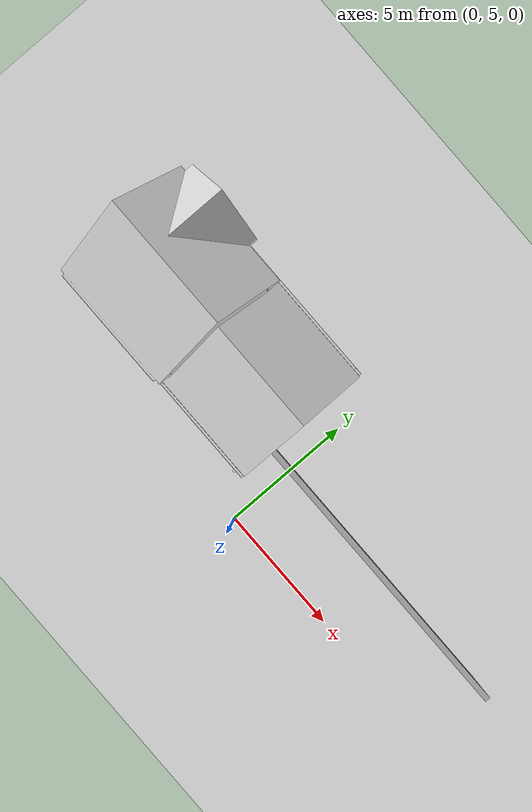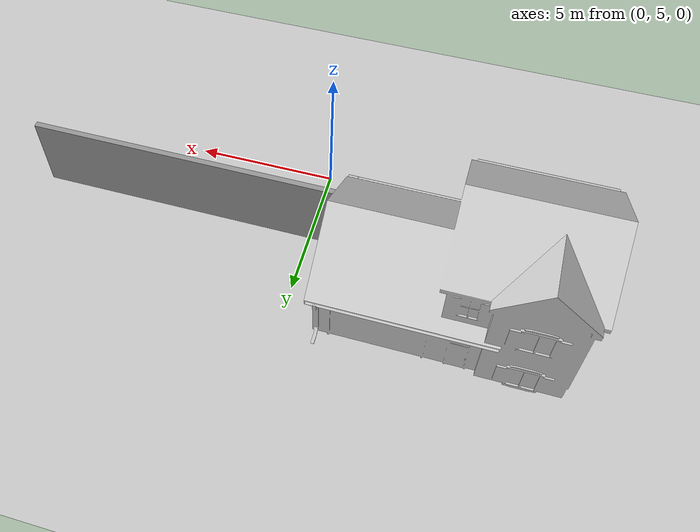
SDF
<sdf version="1.4">
 <world name="default">
  <light name="sun" type="directional">
   <pose>0 0 10 0 -0 0</pose>
   <diffuse>0.8 0.8 0.8 1</diffuse>
   <specular>0.2 0.2 0.2 1</specular>
   <attenuation>
    <range>1000</range>
    <constant>0.9</constant>
    <linear>0.01</linear>
    <quadratic>0.001</quadratic>
   </attenuation>
   <direction>-0.5 0.1 -0.9</direction>
  </light>
  <model name="ground_plane">
   <static>1</static>
   <link name="link">
    <collision name="collision">
     <geometry><plane><normal>0 0 1</normal><size>100 100</size></plane></geometry>
     <surface><friction><ode><mu>100</mu><mu2>50</mu2></ode></friction></surface>
    </collision>
    <visual name="visual">
     <cast_shadows>0</cast_shadows>
     <geometry><plane><normal>0 0 1</normal><size>100 100</size></plane></geometry>
     <material>
      <script><uri>file://media/materials/scripts/gazebo.material</uri><name>Gazebo/Grey</name></script>
     </material>
    </visual>
    <velocity_decay><linear>0</linear><angular>0</angular></velocity_decay>
   </link>
  </model>
  <physics type="ode">
   <max_step_size>0.001</max_step_size>
   <real_time_factor>1</real_time_factor>
   <real_time_update_rate>1000</real_time_update_rate>
   <gravity>0 0 -9.8</gravity>
  </physics>
  <scene><ambient>0.4 0.4 0.4 1</ambient><background>0.7 0.7 0.7 1</background><shadows>1</shadows></scene>
  <model name="House 3">
   <static>1</static>
   <link name="link">
    <collision name="collision">
     <geometry><mesh><uri>model://house_3/meshes/house_3.dae</uri></mesh></geometry>
    </collision>
    <visual name="visual">
     <geometry><mesh><uri>model://house_3/meshes/house_3.dae</uri></mesh></geometry>
     <material>
      <script>
       <uri>model://house_3/materials/scripts</uri>
       <uri>model://house_3/materials/textures</uri>
       <uri>model://house_1/materials/textures</uri>
       <name>House_3/Diffuse</name>
      </script>
      <shader type="normal_map_object_space">
       <normal_map>model://house_1/materials/textures/House_1_Normal.png</normal_map>
      </shader>
     </material>
    </visual>
    <velocity_decay><linear>0</linear><angular>0</angular></velocity_decay>
   </link>
   <pose>-5 9 0 0 -0 0</pose>
  </model>
  <model name="grey_wall">
   <static>1</static>
   <link name="link">
    <pose>0 0 1.4 0 -0 0</pose>
    <collision name="collision"><geometry><box><size>20 0.2 2.8</size></box></geometry></collision>
    <visual name="visual">
     <cast_shadows>0</cast_shadows>
     <geometry><box><size>20 0.2 2.8</size></box></geometry>
     <material>
      <script>
       <uri>model://grey_wall/materials/scripts</uri>
       <uri>model://grey_wall/materials/textures</uri>
       <name>vrc/grey_wall</name>
      </script>
     </material>
    </visual>
    <velocity_decay><linear>0</linear><angular>0</angular></velocity_decay>
   </link>
   <pose>0 7.71769 0 0 -0 0</pose>
  </model>
 </world>
</sdf>
